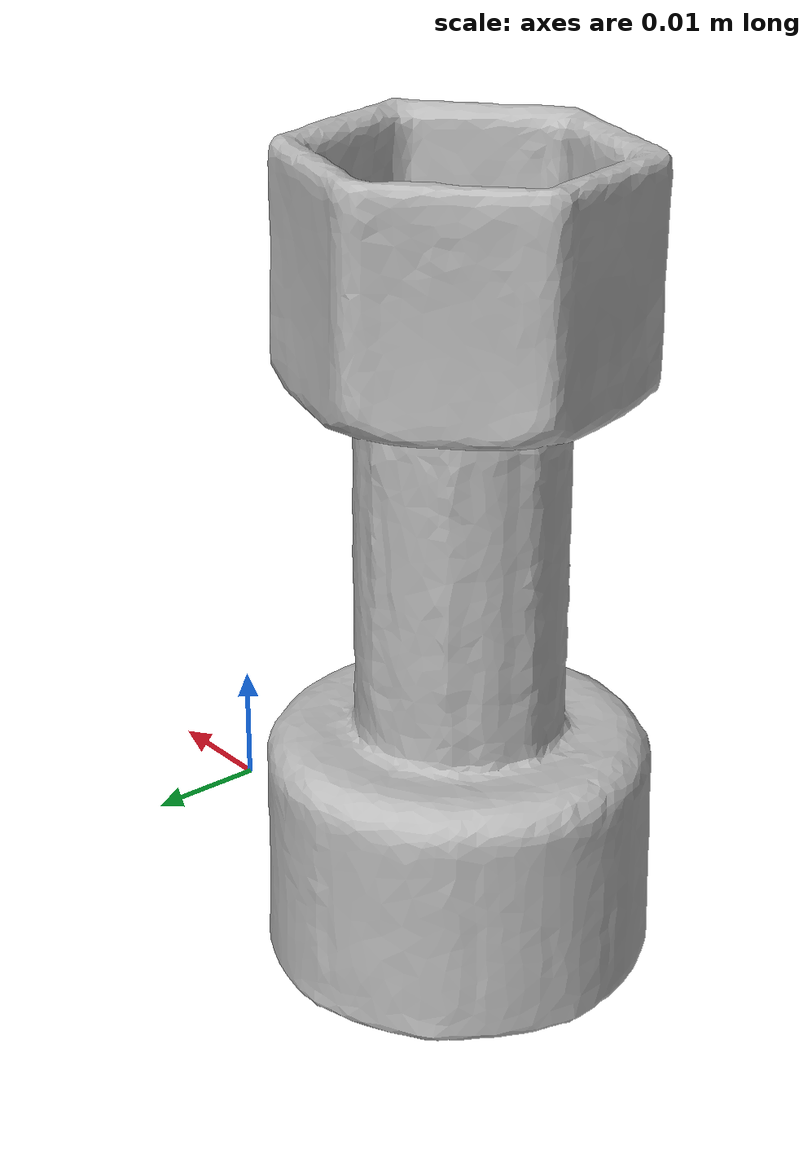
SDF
<?xml version='1.0'?>
<sdf version="1.4">
  <model name="c_toy_airplane">
    <static>false</static>
    <link name="link">
      <inertial>
        <pose>-0.033398753233434206 0.003384443109879014 0.02614525198224048 3.1279762150833235 -0.015600262208349395 0.7695477256379734</pose>
        <mass>2.0862498027561836e-05</mass>
        <inertia>
          <ixx>9.203715550767971e-09</ixx>
          <ixy>-1.21657161687801e-24</ixy>
          <ixz>-4.6385563609844215e-24</ixz>
          <iyy>9.190425263918026e-09</iyy>
          <iyz>4.657792059427528e-24</iyz>
          <izz>2.3195914346199706e-09</izz>
        </inertia>
      </inertial>
      <collision name="collision">
        <geometry>
          <mesh>
            <!-- Use a downsampled mesh for collisions -->
            <uri>model://072-c_toy_airplane/google_16k/072-c_toy_airplane.obj</uri>
            </mesh>
        </geometry>
        <surface>
          <friction>
            <ode>
              <mu>0.9</mu>
              <mu2>0.9</mu2>
            </ode>
          </friction>
          <contact>
            <ode>
              <kp>1000000000000.0</kp>
              <kd>1</kd>
              <min_depth>0.0001</min_depth>
              <max_vel>0.01</max_vel>
            </ode>
          </contact>
          <bounce>
            <restitution_coefficient>0.1</restitution_coefficient>
            <threshold>1000.0</threshold>
          </bounce>
        </surface>
      </collision>
      <visual name="visual">
        <geometry>
          <mesh>
            <uri>model://072-c_toy_airplane/google_16k/072-c_toy_airplane.dae</uri>
            </mesh>
        </geometry>
      </visual>
    </link>
  </model>
</sdf>
